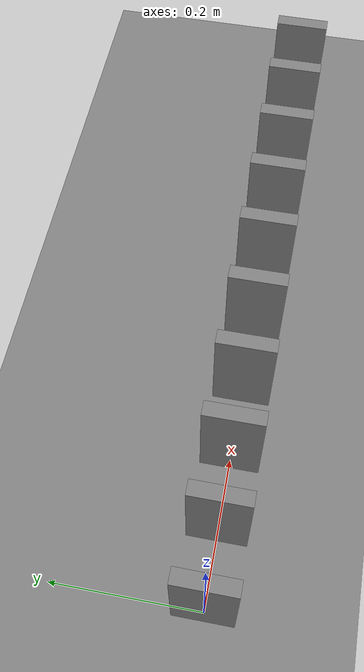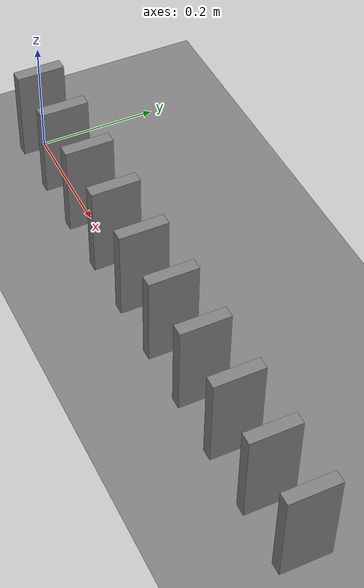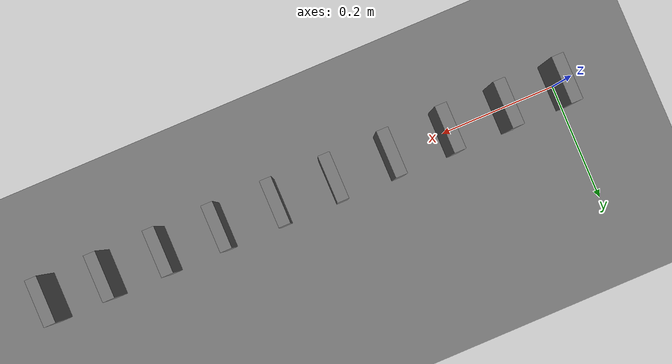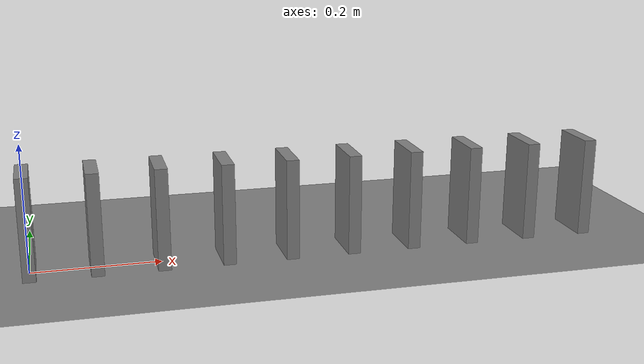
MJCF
<mujoco model="dominoes_fixture">
  <option timestep="0.002"/>
  <worldbody>
    <geom name="floor" type="plane" size="4 4 0.1"/>
    <body name="domino1" pos="0.00 0 0.08">
      <freejoint/>
      <geom name="domino1" type="box" size="0.01 0.04 0.08" mass="0.05"/>
    </body>
    <body name="domino2" pos="0.10 0 0.08">
      <freejoint/>
      <geom name="domino2" type="box" size="0.01 0.04 0.08" mass="0.05"/>
    </body>
    <body name="domino3" pos="0.20 0 0.08">
      <freejoint/>
      <geom name="domino3" type="box" size="0.01 0.04 0.08" mass="0.05"/>
    </body>
    <body name="domino4" pos="0.30 0 0.08">
      <freejoint/>
      <geom name="domino4" type="box" size="0.01 0.04 0.08" mass="0.05"/>
    </body>
    <body name="domino5" pos="0.40 0 0.08">
      <freejoint/>
      <geom name="domino5" type="box" size="0.01 0.04 0.08" mass="0.05"/>
    </body>
    <body name="domino6" pos="0.50 0 0.08">
      <freejoint/>
      <geom name="domino6" type="box" size="0.01 0.04 0.08" mass="0.05"/>
    </body>
    <body name="domino7" pos="0.60 0 0.08">
      <freejoint/>
      <geom name="domino7" type="box" size="0.01 0.04 0.08" mass="0.05"/>
    </body>
    <body name="domino8" pos="0.70 0 0.08">
      <freejoint/>
      <geom name="domino8" type="box" size="0.01 0.04 0.08" mass="0.05"/>
    </body>
    <body name="domino9" pos="0.80 0 0.08">
      <freejoint/>
      <geom name="domino9" type="box" size="0.01 0.04 0.08" mass="0.05"/>
    </body>
    <body name="domino10" pos="0.90 0 0.08">
      <freejoint/>
      <geom name="domino10" type="box" size="0.01 0.04 0.08" mass="0.05"/>
    </body>
  </worldbody>
  <keyframe>
    <key name="start" qpos="0.00 0 0.08 1 0 0 0 0.10 0 0.08 1 0 0 0 0.20 0 0.08 1 0 0 0 0.30 0 0.08 1 0 0 0 0.40 0 0.08 1 0 0 0 0.50 0 0.08 1 0 0 0 0.60 0 0.08 1 0 0 0 0.70 0 0.08 1 0 0 0 0.80 0 0.08 1 0 0 0 0.90 0 0.08 1 0 0 0" qvel="0 0 0 0 4 0 0 0 0 0 0 0 0 0 0 0 0 0 0 0 0 0 0 0 0 0 0 0 0 0 0 0 0 0 0 0 0 0 0 0 0 0 0 0 0 0 0 0 0 0 0 0 0 0 0 0 0 0 0 0"/>
  </keyframe>
</mujoco>
